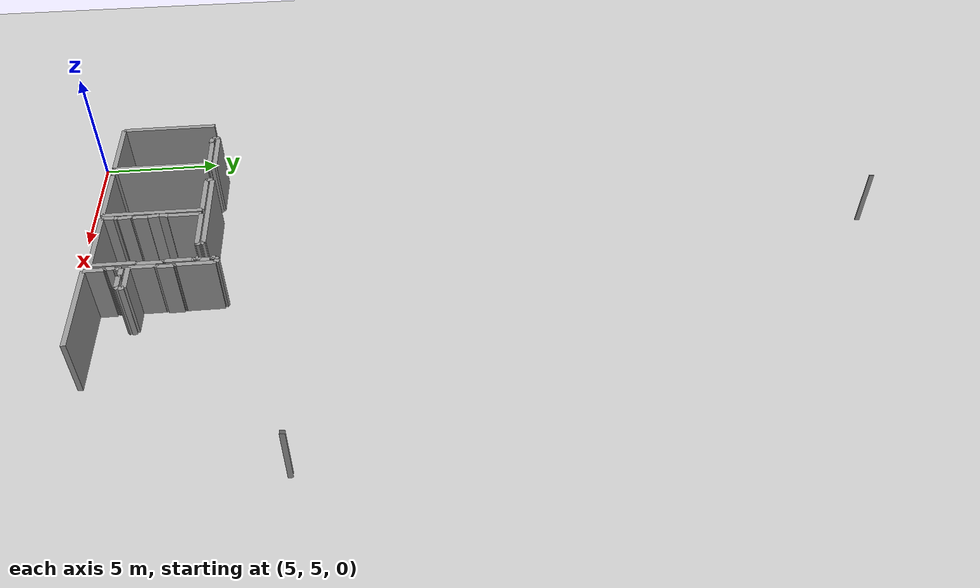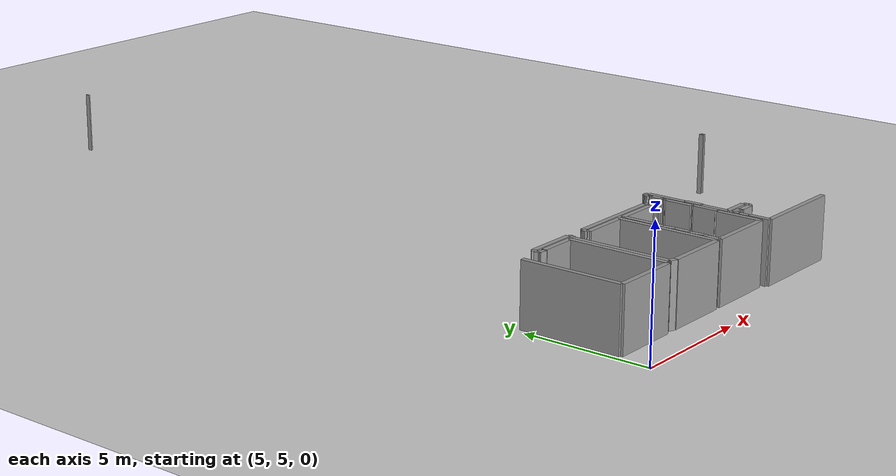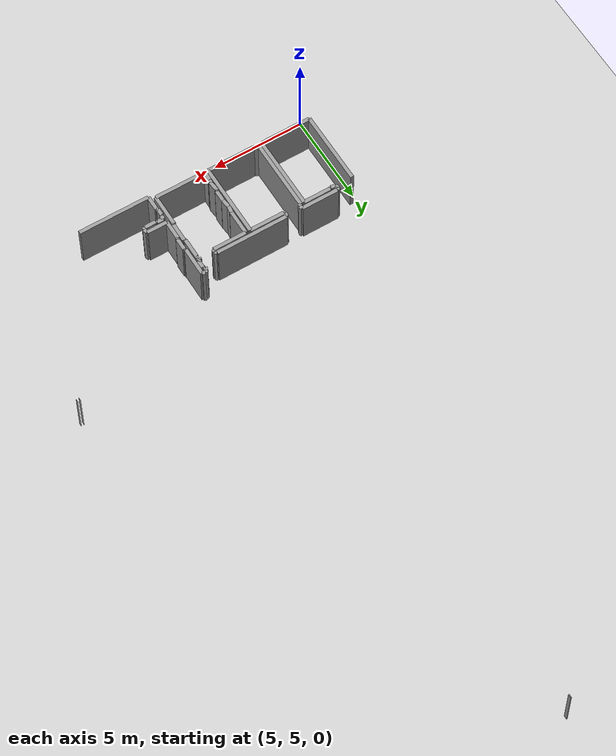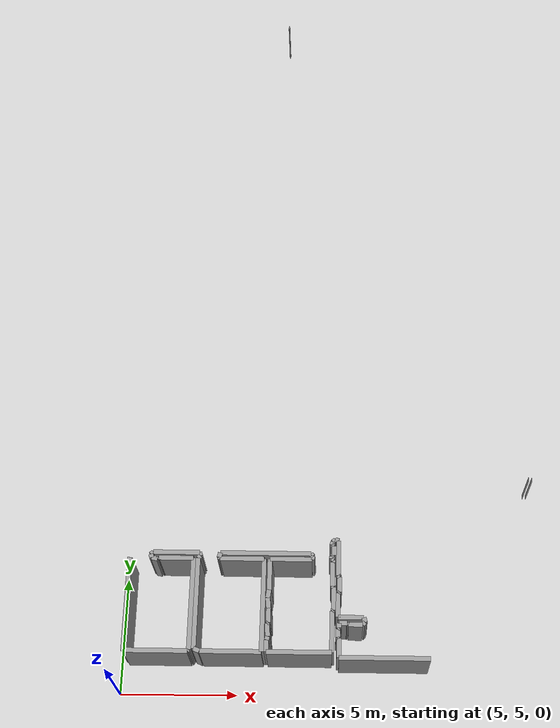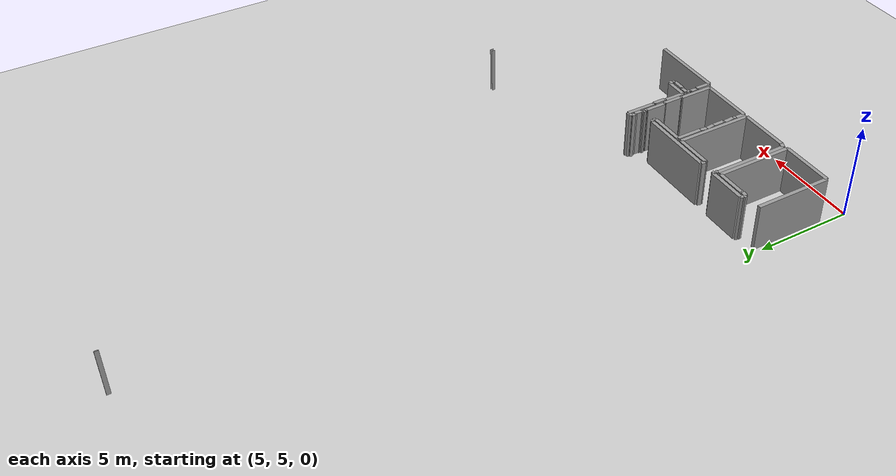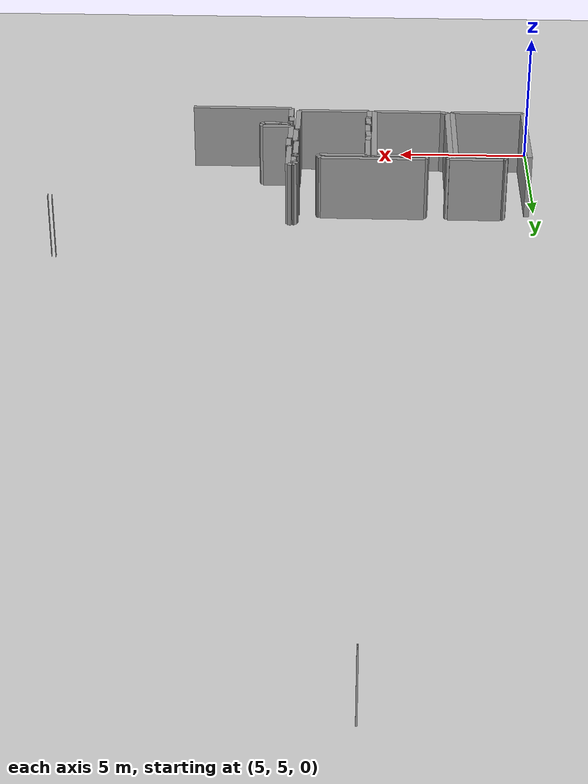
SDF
<sdf version="1.4">
 <world name="1_wall">
  <model name="ground_plane">
   <static>1</static>
   <link name="link">
    <collision name="collision">
     <geometry><plane><normal>0 0 1</normal><size>1000 1000</size></plane></geometry>
     <surface><friction><ode><mu>100</mu><mu2>50</mu2></ode></friction></surface>
    </collision>
    <visual name="visual">
     <cast_shadows>0</cast_shadows>
     <geometry><plane><normal>0 0 1</normal><size>10000 10000</size></plane></geometry>
     <material>
      <script><uri>file://media/materials/scripts/gazebo.material</uri><name>Gazebo/Grey</name></script>
     </material>
    </visual>
    <velocity_decay><linear>0</linear><angular>0</angular></velocity_decay>
   </link>
  </model>
  <model name="Wall_0">
   <static>1</static>
   <link name="Wall_0">
    <collision name="Wall_Collision_0">
     <geometry><box><size>0.049999999999998934 0.2 2.5</size></box></geometry>
     <pose>0 0 1.25 0 -0 0</pose>
    </collision>
    <visual name="Wall_Visual_0">
     <pose>0 0 1.25 0 -0 0</pose>
     <geometry><box><size>0.049999999999998934 0.2 2.5</size></box></geometry>
     <material>
      <script><uri>file://media/materials/scripts/gazebo.material</uri><name>Gazebo/Grey</name></script>
     </material>
    </visual>
    <velocity_decay><linear>0</linear><angular>0</angular></velocity_decay>
    <pose>11.475000000000001 38.5 0 0 0 3.141592653589793</pose>
   </link>
  </model>
  <model name="Wall_1">
   <static>1</static>
   <link name="Wall_1">
    <collision name="Wall_Collision_1">
     <geometry><box><size>0.049999999999998934 0.2 2.5</size></box></geometry>
     <pose>0 0 1.25 0 -0 0</pose>
    </collision>
    <visual name="Wall_Visual_1">
     <pose>0 0 1.25 0 -0 0</pose>
     <geometry><box><size>0.049999999999998934 0.2 2.5</size></box></geometry>
     <material>
      <script><uri>file://media/materials/scripts/gazebo.material</uri><name>Gazebo/Grey</name></script>
     </material>
    </visual>
    <velocity_decay><linear>0</linear><angular>0</angular></velocity_decay>
    <pose>11.475000000000001 38.5 0 0 0 0.0</pose>
   </link>
  </model>
  <model name="Wall_2">
   <static>1</static>
   <link name="Wall_2">
    <collision name="Wall_Collision_2">
     <geometry><box><size>0.0 0.2 2.5</size></box></geometry>
     <pose>0 0 1.25 0 -0 0</pose>
    </collision>
    <visual name="Wall_Visual_2">
     <pose>0 0 1.25 0 -0 0</pose>
     <geometry><box><size>0.0 0.2 2.5</size></box></geometry>
     <material>
      <script><uri>file://media/materials/scripts/gazebo.material</uri><name>Gazebo/Grey</name></script>
     </material>
    </visual>
    <velocity_decay><linear>0</linear><angular>0</angular></velocity_decay>
    <pose>22.8 14.100000000000001 0 0 0 0.0</pose>
   </link>
  </model>
  <model name="Wall_3">
   <static>1</static>
   <link name="Wall_3">
    <collision name="Wall_Collision_3">
     <geometry><box><size>0.0 0.2 2.5</size></box></geometry>
     <pose>0 0 1.25 0 -0 0</pose>
    </collision>
    <visual name="Wall_Visual_3">
     <pose>0 0 1.25 0 -0 0</pose>
     <geometry><box><size>0.0 0.2 2.5</size></box></geometry>
     <material>
      <script><uri>file://media/materials/scripts/gazebo.material</uri><name>Gazebo/Grey</name></script>
     </material>
    </visual>
    <velocity_decay><linear>0</linear><angular>0</angular></velocity_decay>
    <pose>22.650000000000002 14.100000000000001 0 0 0 0.0</pose>
   </link>
  </model>
  <model name="Wall_4">
   <static>1</static>
   <link name="Wall_4">
    <collision name="Wall_Collision_4">
     <geometry><box><size>3.849999999999998 0.2 2.5</size></box></geometry>
     <pose>0 0 1.25 0 -0 0</pose>
    </collision>
    <visual name="Wall_Visual_4">
     <pose>0 0 1.25 0 -0 0</pose>
     <geometry><box><size>3.849999999999998 0.2 2.5</size></box></geometry>
     <material>
      <script><uri>file://media/materials/scripts/gazebo.material</uri><name>Gazebo/Grey</name></script>
     </material>
    </visual>
    <velocity_decay><linear>0</linear><angular>0</angular></velocity_decay>
    <pose>16.275 6.15 0 0 0 3.141592653589793</pose>
   </link>
  </model>
  <model name="Wall_5">
   <static>1</static>
   <link name="Wall_5">
    <collision name="Wall_Collision_5">
     <geometry><box><size>0.7999999999999998 0.2 2.5</size></box></geometry>
     <pose>0 0 1.25 0 -0 0</pose>
    </collision>
    <visual name="Wall_Visual_5">
     <pose>0 0 1.25 0 -0 0</pose>
     <geometry><box><size>0.7999999999999998 0.2 2.5</size></box></geometry>
     <material>
      <script><uri>file://media/materials/scripts/gazebo.material</uri><name>Gazebo/Grey</name></script>
     </material>
    </visual>
    <velocity_decay><linear>0</linear><angular>0</angular></velocity_decay>
    <pose>14.350000000000001 6.550000000000001 0 0 0 1.5707963267948966</pose>
   </link>
  </model>
  <model name="Wall_6">
   <static>1</static>
   <link name="Wall_6">
    <collision name="Wall_Collision_6">
     <geometry><box><size>0.07071067811865513 0.2 2.5</size></box></geometry>
     <pose>0 0 1.25 0 -0 0</pose>
    </collision>
    <visual name="Wall_Visual_6">
     <pose>0 0 1.25 0 -0 0</pose>
     <geometry><box><size>0.07071067811865513 0.2 2.5</size></box></geometry>
     <material>
      <script><uri>file://media/materials/scripts/gazebo.material</uri><name>Gazebo/Grey</name></script>
     </material>
    </visual>
    <velocity_decay><linear>0</linear><angular>0</angular></velocity_decay>
    <pose>14.325000000000001 6.975 0 0 0 2.3561944901923537</pose>
   </link>
  </model>
  <model name="Wall_7">
   <static>1</static>
   <link name="Wall_7">
    <collision name="Wall_Collision_7">
     <geometry><box><size>0.35000000000000053 0.2 2.5</size></box></geometry>
     <pose>0 0 1.25 0 -0 0</pose>
    </collision>
    <visual name="Wall_Visual_7">
     <pose>0 0 1.25 0 -0 0</pose>
     <geometry><box><size>0.35000000000000053 0.2 2.5</size></box></geometry>
     <material>
      <script><uri>file://media/materials/scripts/gazebo.material</uri><name>Gazebo/Grey</name></script>
     </material>
    </visual>
    <velocity_decay><linear>0</linear><angular>0</angular></velocity_decay>
    <pose>14.3 7.175000000000001 0 0 0 1.5707963267948966</pose>
   </link>
  </model>
  <model name="Wall_8">
   <static>1</static>
   <link name="Wall_8">
    <collision name="Wall_Collision_8">
     <geometry><box><size>0.07071067811865513 0.2 2.5</size></box></geometry>
     <pose>0 0 1.25 0 -0 0</pose>
    </collision>
    <visual name="Wall_Visual_8">
     <pose>0 0 1.25 0 -0 0</pose>
     <geometry><box><size>0.07071067811865513 0.2 2.5</size></box></geometry>
     <material>
      <script><uri>file://media/materials/scripts/gazebo.material</uri><name>Gazebo/Grey</name></script>
     </material>
    </visual>
    <velocity_decay><linear>0</linear><angular>0</angular></velocity_decay>
    <pose>14.325000000000001 7.375 0 0 0 0.7853981633974394</pose>
   </link>
  </model>
  <model name="Wall_9">
   <static>1</static>
   <link name="Wall_9">
    <collision name="Wall_Collision_9">
     <geometry><box><size>0.20000000000000018 0.2 2.5</size></box></geometry>
     <pose>0 0 1.25 0 -0 0</pose>
    </collision>
    <visual name="Wall_Visual_9">
     <pose>0 0 1.25 0 -0 0</pose>
     <geometry><box><size>0.20000000000000018 0.2 2.5</size></box></geometry>
     <material>
      <script><uri>file://media/materials/scripts/gazebo.material</uri><name>Gazebo/Grey</name></script>
     </material>
    </visual>
    <velocity_decay><linear>0</linear><angular>0</angular></velocity_decay>
    <pose>14.350000000000001 7.5 0 0 0 1.5707963267948966</pose>
   </link>
  </model>
  <model name="Wall_10">
   <static>1</static>
   <link name="Wall_10">
    <collision name="Wall_Collision_10">
     <geometry><box><size>0.34999999999999964 0.2 2.5</size></box></geometry>
     <pose>0 0 1.25 0 -0 0</pose>
    </collision>
    <visual name="Wall_Visual_10">
     <pose>0 0 1.25 0 -0 0</pose>
     <geometry><box><size>0.34999999999999964 0.2 2.5</size></box></geometry>
     <material>
      <script><uri>file://media/materials/scripts/gazebo.material</uri><name>Gazebo/Grey</name></script>
     </material>
    </visual>
    <velocity_decay><linear>0</linear><angular>0</angular></velocity_decay>
    <pose>14.525000000000002 7.6000000000000005 0 0 0 0.0</pose>
   </link>
  </model>
  <model name="Wall_11">
   <static>1</static>
   <link name="Wall_11">
    <collision name="Wall_Collision_11">
     <geometry><box><size>0.07071067811865388 0.2 2.5</size></box></geometry>
     <pose>0 0 1.25 0 -0 0</pose>
    </collision>
    <visual name="Wall_Visual_11">
     <pose>0 0 1.25 0 -0 0</pose>
     <geometry><box><size>0.07071067811865388 0.2 2.5</size></box></geometry>
     <material>
      <script><uri>file://media/materials/scripts/gazebo.material</uri><name>Gazebo/Grey</name></script>
     </material>
    </visual>
    <velocity_decay><linear>0</linear><angular>0</angular></velocity_decay>
    <pose>14.725000000000001 7.575000000000001 0 0 0 -0.7853981633974572</pose>
   </link>
  </model>
  <model name="Wall_12">
   <static>1</static>
   <link name="Wall_12">
    <collision name="Wall_Collision_12">
     <geometry><box><size>0.6000000000000014 0.2 2.5</size></box></geometry>
     <pose>0 0 1.25 0 -0 0</pose>
    </collision>
    <visual name="Wall_Visual_12">
     <pose>0 0 1.25 0 -0 0</pose>
     <geometry><box><size>0.6000000000000014 0.2 2.5</size></box></geometry>
     <material>
      <script><uri>file://media/materials/scripts/gazebo.material</uri><name>Gazebo/Grey</name></script>
     </material>
    </visual>
    <velocity_decay><linear>0</linear><angular>0</angular></velocity_decay>
    <pose>15.05 7.550000000000001 0 0 0 0.0</pose>
   </link>
  </model>
  <model name="Wall_13">
   <static>1</static>
   <link name="Wall_13">
    <collision name="Wall_Collision_13">
     <geometry><box><size>0.141421356237309 0.2 2.5</size></box></geometry>
     <pose>0 0 1.25 0 -0 0</pose>
    </collision>
    <visual name="Wall_Visual_13">
     <pose>0 0 1.25 0 -0 0</pose>
     <geometry><box><size>0.141421356237309 0.2 2.5</size></box></geometry>
     <material>
      <script><uri>file://media/materials/scripts/gazebo.material</uri><name>Gazebo/Grey</name></script>
     </material>
    </visual>
    <velocity_decay><linear>0</linear><angular>0</angular></velocity_decay>
    <pose>15.400000000000002 7.6000000000000005 0 0 0 0.7853981633974483</pose>
   </link>
  </model>
  <model name="Wall_14">
   <static>1</static>
   <link name="Wall_14">
    <collision name="Wall_Collision_14">
     <geometry><box><size>0.20615528128088337 0.2 2.5</size></box></geometry>
     <pose>0 0 1.25 0 -0 0</pose>
    </collision>
    <visual name="Wall_Visual_14">
     <pose>0 0 1.25 0 -0 0</pose>
     <geometry><box><size>0.20615528128088337 0.2 2.5</size></box></geometry>
     <material>
      <script><uri>file://media/materials/scripts/gazebo.material</uri><name>Gazebo/Grey</name></script>
     </material>
    </visual>
    <velocity_decay><linear>0</linear><angular>0</angular></velocity_decay>
    <pose>15.425 7.75 0 0 0 1.815774989921764</pose>
   </link>
  </model>
  <model name="Wall_15">
   <static>1</static>
   <link name="Wall_15">
    <collision name="Wall_Collision_15">
     <geometry><box><size>1.0999999999999996 0.2 2.5</size></box></geometry>
     <pose>0 0 1.25 0 -0 0</pose>
    </collision>
    <visual name="Wall_Visual_15">
     <pose>0 0 1.25 0 -0 0</pose>
     <geometry><box><size>1.0999999999999996 0.2 2.5</size></box></geometry>
     <material>
      <script><uri>file://media/materials/scripts/gazebo.material</uri><name>Gazebo/Grey</name></script>
     </material>
    </visual>
    <velocity_decay><linear>0</linear><angular>0</angular></velocity_decay>
    <pose>14.850000000000001 7.8500000000000005 0 0 0 3.141592653589793</pose>
   </link>
  </model>
  <model name="Wall_16">
   <static>1</static>
   <link name="Wall_16">
    <collision name="Wall_Collision_16">
     <geometry><box><size>1.0499999999999998 0.2 2.5</size></box></geometry>
     <pose>0 0 1.25 0 -0 0</pose>
    </collision>
    <visual name="Wall_Visual_16">
     <pose>0 0 1.25 0 -0 0</pose>
     <geometry><box><size>1.0499999999999998 0.2 2.5</size></box></geometry>
     <material>
      <script><uri>file://media/materials/scripts/gazebo.material</uri><name>Gazebo/Grey</name></script>
     </material>
    </visual>
    <velocity_decay><linear>0</linear><angular>0</angular></velocity_decay>
    <pose>14.3 8.375 0 0 0 1.5707963267948966</pose>
   </link>
  </model>
  <model name="Wall_17">
   <static>1</static>
   <link name="Wall_17">
    <collision name="Wall_Collision_17">
     <geometry><box><size>0.07071067811865576 0.2 2.5</size></box></geometry>
     <pose>0 0 1.25 0 -0 0</pose>
    </collision>
    <visual name="Wall_Visual_17">
     <pose>0 0 1.25 0 -0 0</pose>
     <geometry><box><size>0.07071067811865576 0.2 2.5</size></box></geometry>
     <material>
      <script><uri>file://media/materials/scripts/gazebo.material</uri><name>Gazebo/Grey</name></script>
     </material>
    </visual>
    <velocity_decay><linear>0</linear><angular>0</angular></velocity_decay>
    <pose>14.325000000000001 8.925 0 0 0 0.7853981633974483</pose>
   </link>
  </model>
  <model name="Wall_18">
   <static>1</static>
   <link name="Wall_18">
    <collision name="Wall_Collision_18">
     <geometry><box><size>0.6500000000000004 0.2 2.5</size></box></geometry>
     <pose>0 0 1.25 0 -0 0</pose>
    </collision>
    <visual name="Wall_Visual_18">
     <pose>0 0 1.25 0 -0 0</pose>
     <geometry><box><size>0.6500000000000004 0.2 2.5</size></box></geometry>
     <material>
      <script><uri>file://media/materials/scripts/gazebo.material</uri><name>Gazebo/Grey</name></script>
     </material>
    </visual>
    <velocity_decay><linear>0</linear><angular>0</angular></velocity_decay>
    <pose>14.350000000000001 9.275000000000002 0 0 0 1.5707963267948966</pose>
   </link>
  </model>
  <model name="Wall_19">
   <static>1</static>
   <link name="Wall_19">
    <collision name="Wall_Collision_19">
     <geometry><box><size>0.0707106781186545 0.2 2.5</size></box></geometry>
     <pose>0 0 1.25 0 -0 0</pose>
    </collision>
    <visual name="Wall_Visual_19">
     <pose>0 0 1.25 0 -0 0</pose>
     <geometry><box><size>0.0707106781186545 0.2 2.5</size></box></geometry>
     <material>
      <script><uri>file://media/materials/scripts/gazebo.material</uri><name>Gazebo/Grey</name></script>
     </material>
    </visual>
    <velocity_decay><linear>0</linear><angular>0</angular></velocity_decay>
    <pose>14.325000000000001 9.625 0 0 0 2.3561944901923626</pose>
   </link>
  </model>
  <model name="Wall_20">
   <static>1</static>
   <link name="Wall_20">
    <collision name="Wall_Collision_20">
     <geometry><box><size>1.5500000000000007 0.2 2.5</size></box></geometry>
     <pose>0 0 1.25 0 -0 0</pose>
    </collision>
    <visual name="Wall_Visual_20">
     <pose>0 0 1.25 0 -0 0</pose>
     <geometry><box><size>1.5500000000000007 0.2 2.5</size></box></geometry>
     <material>
      <script><uri>file://media/materials/scripts/gazebo.material</uri><name>Gazebo/Grey</name></script>
     </material>
    </visual>
    <velocity_decay><linear>0</linear><angular>0</angular></velocity_decay>
    <pose>14.3 10.425 0 0 0 1.5707963267948966</pose>
   </link>
  </model>
  <model name="Wall_21">
   <static>1</static>
   <link name="Wall_21">
    <collision name="Wall_Collision_21">
     <geometry><box><size>0.15811388300841897 0.2 2.5</size></box></geometry>
     <pose>0 0 1.25 0 -0 0</pose>
    </collision>
    <visual name="Wall_Visual_21">
     <pose>0 0 1.25 0 -0 0</pose>
     <geometry><box><size>0.15811388300841897 0.2 2.5</size></box></geometry>
     <material>
      <script><uri>file://media/materials/scripts/gazebo.material</uri><name>Gazebo/Grey</name></script>
     </material>
    </visual>
    <velocity_decay><linear>0</linear><angular>0</angular></velocity_decay>
    <pose>14.225000000000001 11.225000000000001 0 0 0 2.819842099193158</pose>
   </link>
  </model>
  <model name="Wall_22">
   <static>1</static>
   <link name="Wall_22">
    <collision name="Wall_Collision_22">
     <geometry><box><size>0.141421356237309 0.2 2.5</size></box></geometry>
     <pose>0 0 1.25 0 -0 0</pose>
    </collision>
    <visual name="Wall_Visual_22">
     <pose>0 0 1.25 0 -0 0</pose>
     <geometry><box><size>0.141421356237309 0.2 2.5</size></box></geometry>
     <material>
      <script><uri>file://media/materials/scripts/gazebo.material</uri><name>Gazebo/Grey</name></script>
     </material>
    </visual>
    <velocity_decay><linear>0</linear><angular>0</angular></velocity_decay>
    <pose>14.100000000000001 11.2 0 0 0 -2.356194490192345</pose>
   </link>
  </model>
  <model name="Wall_23">
   <static>1</static>
   <link name="Wall_23">
    <collision name="Wall_Collision_23">
     <geometry><box><size>0.15811388300841953 0.2 2.5</size></box></geometry>
     <pose>0 0 1.25 0 -0 0</pose>
    </collision>
    <visual name="Wall_Visual_23">
     <pose>0 0 1.25 0 -0 0</pose>
     <geometry><box><size>0.15811388300841953 0.2 2.5</size></box></geometry>
     <material>
      <script><uri>file://media/materials/scripts/gazebo.material</uri><name>Gazebo/Grey</name></script>
     </material>
    </visual>
    <velocity_decay><linear>0</linear><angular>0</angular></velocity_decay>
    <pose>14.025 11.075 0 0 0 -1.8925468811915425</pose>
   </link>
  </model>
  <model name="Wall_24">
   <static>1</static>
   <link name="Wall_24">
    <collision name="Wall_Collision_24">
     <geometry><box><size>0.11180339887499027 0.2 2.5</size></box></geometry>
     <pose>0 0 1.25 0 -0 0</pose>
    </collision>
    <visual name="Wall_Visual_24">
     <pose>0 0 1.25 0 -0 0</pose>
     <geometry><box><size>0.11180339887499027 0.2 2.5</size></box></geometry>
     <material>
      <script><uri>file://media/materials/scripts/gazebo.material</uri><name>Gazebo/Grey</name></script>
     </material>
    </visual>
    <velocity_decay><linear>0</linear><angular>0</angular></velocity_decay>
    <pose>14.05 10.975000000000001 0 0 0 -0.4636476090007919</pose>
   </link>
  </model>
  <model name="Wall_25">
   <static>1</static>
   <link name="Wall_25">
    <collision name="Wall_Collision_25">
     <geometry><box><size>0.40000000000000036 0.2 2.5</size></box></geometry>
     <pose>0 0 1.25 0 -0 0</pose>
    </collision>
    <visual name="Wall_Visual_25">
     <pose>0 0 1.25 0 -0 0</pose>
     <geometry><box><size>0.40000000000000036 0.2 2.5</size></box></geometry>
     <material>
      <script><uri>file://media/materials/scripts/gazebo.material</uri><name>Gazebo/Grey</name></script>
     </material>
    </visual>
    <velocity_decay><linear>0</linear><angular>0</angular></velocity_decay>
    <pose>14.100000000000001 10.75 0 0 0 -1.5707963267948966</pose>
   </link>
  </model>
  <model name="Wall_26">
   <static>1</static>
   <link name="Wall_26">
    <collision name="Wall_Collision_26">
     <geometry><box><size>0.11180339887499108 0.2 2.5</size></box></geometry>
     <pose>0 0 1.25 0 -0 0</pose>
    </collision>
    <visual name="Wall_Visual_26">
     <pose>0 0 1.25 0 -0 0</pose>
     <geometry><box><size>0.11180339887499108 0.2 2.5</size></box></geometry>
     <material>
      <script><uri>file://media/materials/scripts/gazebo.material</uri><name>Gazebo/Grey</name></script>
     </material>
    </visual>
    <velocity_decay><linear>0</linear><angular>0</angular></velocity_decay>
    <pose>14.05 10.525 0 0 0 -2.677945044588987</pose>
   </link>
  </model>
  <model name="Wall_27">
   <static>1</static>
   <link name="Wall_27">
    <collision name="Wall_Collision_27">
     <geometry><box><size>0.09999999999999964 0.2 2.5</size></box></geometry>
     <pose>0 0 1.25 0 -0 0</pose>
    </collision>
    <visual name="Wall_Visual_27">
     <pose>0 0 1.25 0 -0 0</pose>
     <geometry><box><size>0.09999999999999964 0.2 2.5</size></box></geometry>
     <material>
      <script><uri>file://media/materials/scripts/gazebo.material</uri><name>Gazebo/Grey</name></script>
     </material>
    </visual>
    <velocity_decay><linear>0</linear><angular>0</angular></velocity_decay>
    <pose>14.0 10.45 0 0 0 -1.5707963267948966</pose>
   </link>
  </model>
  <model name="Wall_28">
   <static>1</static>
   <link name="Wall_28">
    <collision name="Wall_Collision_28">
     <geometry><box><size>0.11180339887499027 0.2 2.5</size></box></geometry>
     <pose>0 0 1.25 0 -0 0</pose>
    </collision>
    <visual name="Wall_Visual_28">
     <pose>0 0 1.25 0 -0 0</pose>
     <geometry><box><size>0.11180339887499027 0.2 2.5</size></box></geometry>
     <material>
      <script><uri>file://media/materials/scripts/gazebo.material</uri><name>Gazebo/Grey</name></script>
     </material>
    </visual>
    <velocity_decay><linear>0</linear><angular>0</angular></velocity_decay>
    <pose>14.05 10.375 0 0 0 -0.4636476090007919</pose>
   </link>
  </model>
  <model name="Wall_29">
   <static>1</static>
   <link name="Wall_29">
    <collision name="Wall_Collision_29">
     <geometry><box><size>0.11180339887499108 0.2 2.5</size></box></geometry>
     <pose>0 0 1.25 0 -0 0</pose>
    </collision>
    <visual name="Wall_Visual_29">
     <pose>0 0 1.25 0 -0 0</pose>
     <geometry><box><size>0.11180339887499108 0.2 2.5</size></box></geometry>
     <material>
      <script><uri>file://media/materials/scripts/gazebo.material</uri><name>Gazebo/Grey</name></script>
     </material>
    </visual>
    <velocity_decay><linear>0</linear><angular>0</angular></velocity_decay>
    <pose>14.075000000000001 10.3 0 0 0 -2.0344439357957027</pose>
   </link>
  </model>
  <model name="Wall_30">
   <static>1</static>
   <link name="Wall_30">
    <collision name="Wall_Collision_30">
     <geometry><box><size>1.049999999999999 0.2 2.5</size></box></geometry>
     <pose>0 0 1.25 0 -0 0</pose>
    </collision>
    <visual name="Wall_Visual_30">
     <pose>0 0 1.25 0 -0 0</pose>
     <geometry><box><size>1.049999999999999 0.2 2.5</size></box></geometry>
     <material>
      <script><uri>file://media/materials/scripts/gazebo.material</uri><name>Gazebo/Grey</name></script>
     </material>
    </visual>
    <velocity_decay><linear>0</linear><angular>0</angular></velocity_decay>
    <pose>14.05 9.725000000000001 0 0 0 -1.5707963267948966</pose>
   </link>
  </model>
  <model name="Wall_31">
   <static>1</static>
   <link name="Wall_31">
    <collision name="Wall_Collision_31">
     <geometry><box><size>0.07071067811865576 0.2 2.5</size></box></geometry>
     <pose>0 0 1.25 0 -0 0</pose>
    </collision>
    <visual name="Wall_Visual_31">
     <pose>0 0 1.25 0 -0 0</pose>
     <geometry><box><size>0.07071067811865576 0.2 2.5</size></box></geometry>
     <material>
      <script><uri>file://media/materials/scripts/gazebo.material</uri><name>Gazebo/Grey</name></script>
     </material>
    </visual>
    <velocity_decay><linear>0</linear><angular>0</angular></velocity_decay>
    <pose>14.075000000000001 9.175 0 0 0 -0.7853981633974483</pose>
   </link>
  </model>
  <model name="Wall_32">
   <static>1</static>
   <link name="Wall_32">
    <collision name="Wall_Collision_32">
     <geometry><box><size>1.0 0.2 2.5</size></box></geometry>
     <pose>0 0 1.25 0 -0 0</pose>
    </collision>
    <visual name="Wall_Visual_32">
     <pose>0 0 1.25 0 -0 0</pose>
     <geometry><box><size>1.0 0.2 2.5</size></box></geometry>
     <material>
      <script><uri>file://media/materials/scripts/gazebo.material</uri><name>Gazebo/Grey</name></script>
     </material>
    </visual>
    <velocity_decay><linear>0</linear><angular>0</angular></velocity_decay>
    <pose>14.100000000000001 8.65 0 0 0 -1.5707963267948966</pose>
   </link>
  </model>
  <model name="Wall_33">
   <static>1</static>
   <link name="Wall_33">
    <collision name="Wall_Collision_33">
     <geometry><box><size>0.07071067811865576 0.2 2.5</size></box></geometry>
     <pose>0 0 1.25 0 -0 0</pose>
    </collision>
    <visual name="Wall_Visual_33">
     <pose>0 0 1.25 0 -0 0</pose>
     <geometry><box><size>0.07071067811865576 0.2 2.5</size></box></geometry>
     <material>
      <script><uri>file://media/materials/scripts/gazebo.material</uri><name>Gazebo/Grey</name></script>
     </material>
    </visual>
    <velocity_decay><linear>0</linear><angular>0</angular></velocity_decay>
    <pose>14.075000000000001 8.125 0 0 0 -2.356194490192345</pose>
   </link>
  </model>
  <model name="Wall_34">
   <static>1</static>
   <link name="Wall_34">
    <collision name="Wall_Collision_34">
     <geometry><box><size>1.7499999999999991 0.2 2.5</size></box></geometry>
     <pose>0 0 1.25 0 -0 0</pose>
    </collision>
    <visual name="Wall_Visual_34">
     <pose>0 0 1.25 0 -0 0</pose>
     <geometry><box><size>1.7499999999999991 0.2 2.5</size></box></geometry>
     <material>
      <script><uri>file://media/materials/scripts/gazebo.material</uri><name>Gazebo/Grey</name></script>
     </material>
    </visual>
    <velocity_decay><linear>0</linear><angular>0</angular></velocity_decay>
    <pose>14.05 7.225 0 0 0 -1.5707963267948966</pose>
   </link>
  </model>
  <model name="Wall_35">
   <static>1</static>
   <link name="Wall_35">
    <collision name="Wall_Collision_35">
     <geometry><box><size>2.75 0.2 2.5</size></box></geometry>
     <pose>0 0 1.25 0 -0 0</pose>
    </collision>
    <visual name="Wall_Visual_35">
     <pose>0 0 1.25 0 -0 0</pose>
     <geometry><box><size>2.75 0.2 2.5</size></box></geometry>
     <material>
      <script><uri>file://media/materials/scripts/gazebo.material</uri><name>Gazebo/Grey</name></script>
     </material>
    </visual>
    <velocity_decay><linear>0</linear><angular>0</angular></velocity_decay>
    <pose>12.675 6.3500000000000005 0 0 0 3.141592653589793</pose>
   </link>
  </model>
  <model name="Wall_36">
   <static>1</static>
   <link name="Wall_36">
    <collision name="Wall_Collision_36">
     <geometry><box><size>0.5 0.2 2.5</size></box></geometry>
     <pose>0 0 1.25 0 -0 0</pose>
    </collision>
    <visual name="Wall_Visual_36">
     <pose>0 0 1.25 0 -0 0</pose>
     <geometry><box><size>0.5 0.2 2.5</size></box></geometry>
     <material>
      <script><uri>file://media/materials/scripts/gazebo.material</uri><name>Gazebo/Grey</name></script>
     </material>
    </visual>
    <velocity_decay><linear>0</linear><angular>0</angular></velocity_decay>
    <pose>11.3 6.6000000000000005 0 0 0 1.5707963267948966</pose>
   </link>
  </model>
  <model name="Wall_37">
   <static>1</static>
   <link name="Wall_37">
    <collision name="Wall_Collision_37">
     <geometry><box><size>0.1581138830084187 0.2 2.5</size></box></geometry>
     <pose>0 0 1.25 0 -0 0</pose>
    </collision>
    <visual name="Wall_Visual_37">
     <pose>0 0 1.25 0 -0 0</pose>
     <geometry><box><size>0.1581138830084187 0.2 2.5</size></box></geometry>
     <material>
      <script><uri>file://media/materials/scripts/gazebo.material</uri><name>Gazebo/Grey</name></script>
     </material>
    </visual>
    <velocity_decay><linear>0</linear><angular>0</angular></velocity_decay>
    <pose>11.325000000000001 6.925000000000001 0 0 0 1.249045772398249</pose>
   </link>
  </model>
  <model name="Wall_38">
   <static>1</static>
   <link name="Wall_38">
    <collision name="Wall_Collision_38">
     <geometry><box><size>0.5522680508593638 0.2 2.5</size></box></geometry>
     <pose>0 0 1.25 0 -0 0</pose>
    </collision>
    <visual name="Wall_Visual_38">
     <pose>0 0 1.25 0 -0 0</pose>
     <geometry><box><size>0.5522680508593638 0.2 2.5</size></box></geometry>
     <material>
      <script><uri>file://media/materials/scripts/gazebo.material</uri><name>Gazebo/Grey</name></script>
     </material>
    </visual>
    <velocity_decay><linear>0</linear><angular>0</angular></velocity_decay>
    <pose>11.325000000000001 7.275 0 0 0 1.6614562139956428</pose>
   </link>
  </model>
  <model name="Wall_39">
   <static>1</static>
   <link name="Wall_39">
    <collision name="Wall_Collision_39">
     <geometry><box><size>0.07071067811865513 0.2 2.5</size></box></geometry>
     <pose>0 0 1.25 0 -0 0</pose>
    </collision>
    <visual name="Wall_Visual_39">
     <pose>0 0 1.25 0 -0 0</pose>
     <geometry><box><size>0.07071067811865513 0.2 2.5</size></box></geometry>
     <material>
      <script><uri>file://media/materials/scripts/gazebo.material</uri><name>Gazebo/Grey</name></script>
     </material>
    </visual>
    <velocity_decay><linear>0</linear><angular>0</angular></velocity_decay>
    <pose>11.325000000000001 7.575000000000001 0 0 0 0.7853981633974394</pose>
   </link>
  </model>
  <model name="Wall_40">
   <static>1</static>
   <link name="Wall_40">
    <collision name="Wall_Collision_40">
     <geometry><box><size>0.6000000000000005 0.2 2.5</size></box></geometry>
     <pose>0 0 1.25 0 -0 0</pose>
    </collision>
    <visual name="Wall_Visual_40">
     <pose>0 0 1.25 0 -0 0</pose>
     <geometry><box><size>0.6000000000000005 0.2 2.5</size></box></geometry>
     <material>
      <script><uri>file://media/materials/scripts/gazebo.material</uri><name>Gazebo/Grey</name></script>
     </material>
    </visual>
    <velocity_decay><linear>0</linear><angular>0</angular></velocity_decay>
    <pose>11.350000000000001 7.9 0 0 0 1.5707963267948966</pose>
   </link>
  </model>
  <model name="Wall_41">
   <static>1</static>
   <link name="Wall_41">
    <collision name="Wall_Collision_41">
     <geometry><box><size>0.4527692569068702 0.2 2.5</size></box></geometry>
     <pose>0 0 1.25 0 -0 0</pose>
    </collision>
    <visual name="Wall_Visual_41">
     <pose>0 0 1.25 0 -0 0</pose>
     <geometry><box><size>0.4527692569068702 0.2 2.5</size></box></geometry>
     <material>
      <script><uri>file://media/materials/scripts/gazebo.material</uri><name>Gazebo/Grey</name></script>
     </material>
    </visual>
    <velocity_decay><linear>0</linear><angular>0</angular></velocity_decay>
    <pose>11.325000000000001 8.425 0 0 0 1.681453547968794</pose>
   </link>
  </model>
  <model name="Wall_42">
   <static>1</static>
   <link name="Wall_42">
    <collision name="Wall_Collision_42">
     <geometry><box><size>0.3535533905932735 0.2 2.5</size></box></geometry>
     <pose>0 0 1.25 0 -0 0</pose>
    </collision>
    <visual name="Wall_Visual_42">
     <pose>0 0 1.25 0 -0 0</pose>
     <geometry><box><size>0.3535533905932735 0.2 2.5</size></box></geometry>
     <material>
      <script><uri>file://media/materials/scripts/gazebo.material</uri><name>Gazebo/Grey</name></script>
     </material>
    </visual>
    <velocity_decay><linear>0</linear><angular>0</angular></velocity_decay>
    <pose>11.325000000000001 8.825 0 0 0 1.4288992721907305</pose>
   </link>
  </model>
  <model name="Wall_43">
   <static>1</static>
   <link name="Wall_43">
    <collision name="Wall_Collision_43">
     <geometry><box><size>1.3500000000000014 0.2 2.5</size></box></geometry>
     <pose>0 0 1.25 0 -0 0</pose>
    </collision>
    <visual name="Wall_Visual_43">
     <pose>0 0 1.25 0 -0 0</pose>
     <geometry><box><size>1.3500000000000014 0.2 2.5</size></box></geometry>
     <material>
      <script><uri>file://media/materials/scripts/gazebo.material</uri><name>Gazebo/Grey</name></script>
     </material>
    </visual>
    <velocity_decay><linear>0</linear><angular>0</angular></velocity_decay>
    <pose>11.350000000000001 9.675 0 0 0 1.5707963267948966</pose>
   </link>
  </model>
  <model name="Wall_44">
   <static>1</static>
   <link name="Wall_44">
    <collision name="Wall_Collision_44">
     <geometry><box><size>1.799999999999999 0.2 2.5</size></box></geometry>
     <pose>0 0 1.25 0 -0 0</pose>
    </collision>
    <visual name="Wall_Visual_44">
     <pose>0 0 1.25 0 -0 0</pose>
     <geometry><box><size>1.799999999999999 0.2 2.5</size></box></geometry>
     <material>
      <script><uri>file://media/materials/scripts/gazebo.material</uri><name>Gazebo/Grey</name></script>
     </material>
    </visual>
    <velocity_decay><linear>0</linear><angular>0</angular></velocity_decay>
    <pose>12.25 10.350000000000001 0 0 0 0.0</pose>
   </link>
  </model>
  <model name="Wall_45">
   <static>1</static>
   <link name="Wall_45">
    <collision name="Wall_Collision_45">
     <geometry><box><size>0.15811388300841783 0.2 2.5</size></box></geometry>
     <pose>0 0 1.25 0 -0 0</pose>
    </collision>
    <visual name="Wall_Visual_45">
     <pose>0 0 1.25 0 -0 0</pose>
     <geometry><box><size>0.15811388300841783 0.2 2.5</size></box></geometry>
     <material>
      <script><uri>file://media/materials/scripts/gazebo.material</uri><name>Gazebo/Grey</name></script>
     </material>
    </visual>
    <velocity_decay><linear>0</linear><angular>0</angular></velocity_decay>
    <pose>13.175 10.425 0 0 0 1.2490457723982473</pose>
   </link>
  </model>
  <model name="Wall_46">
   <static>1</static>
   <link name="Wall_46">
    <collision name="Wall_Collision_46">
     <geometry><box><size>0.14142135623731025 0.2 2.5</size></box></geometry>
     <pose>0 0 1.25 0 -0 0</pose>
    </collision>
    <visual name="Wall_Visual_46">
     <pose>0 0 1.25 0 -0 0</pose>
     <geometry><box><size>0.14142135623731025 0.2 2.5</size></box></geometry>
     <material>
      <script><uri>file://media/materials/scripts/gazebo.material</uri><name>Gazebo/Grey</name></script>
     </material>
    </visual>
    <velocity_decay><linear>0</linear><angular>0</angular></velocity_decay>
    <pose>13.150000000000002 10.55 0 0 0 2.356194490192336</pose>
   </link>
  </model>
  <model name="Wall_47">
   <static>1</static>
   <link name="Wall_47">
    <collision name="Wall_Collision_47">
     <geometry><box><size>3.9000000000000004 0.2 2.5</size></box></geometry>
     <pose>0 0 1.25 0 -0 0</pose>
    </collision>
    <visual name="Wall_Visual_47">
     <pose>0 0 1.25 0 -0 0</pose>
     <geometry><box><size>3.9000000000000004 0.2 2.5</size></box></geometry>
     <material>
      <script><uri>file://media/materials/scripts/gazebo.material</uri><name>Gazebo/Grey</name></script>
     </material>
    </visual>
    <velocity_decay><linear>0</linear><angular>0</angular></velocity_decay>
    <pose>11.150000000000002 10.600000000000001 0 0 0 3.141592653589793</pose>
   </link>
  </model>
  <model name="Wall_48">
   <static>1</static>
   <link name="Wall_48">
    <collision name="Wall_Collision_48">
     <geometry><box><size>0.20615528128088423 0.2 2.5</size></box></geometry>
     <pose>0 0 1.25 0 -0 0</pose>
    </collision>
    <visual name="Wall_Visual_48">
     <pose>0 0 1.25 0 -0 0</pose>
     <geometry><box><size>0.20615528128088423 0.2 2.5</size></box></geometry>
     <material>
      <script><uri>file://media/materials/scripts/gazebo.material</uri><name>Gazebo/Grey</name></script>
     </material>
    </visual>
    <velocity_decay><linear>0</linear><angular>0</angular></velocity_decay>
    <pose>9.175 10.5 0 0 0 -1.8157749899217628</pose>
   </link>
  </model>
  <model name="Wall_49">
   <static>1</static>
   <link name="Wall_49">
    <collision name="Wall_Collision_49">
     <geometry><box><size>0.0707106781186545 0.2 2.5</size></box></geometry>
     <pose>0 0 1.25 0 -0 0</pose>
    </collision>
    <visual name="Wall_Visual_49">
     <pose>0 0 1.25 0 -0 0</pose>
     <geometry><box><size>0.0707106781186545 0.2 2.5</size></box></geometry>
     <material>
      <script><uri>file://media/materials/scripts/gazebo.material</uri><name>Gazebo/Grey</name></script>
     </material>
    </visual>
    <velocity_decay><linear>0</linear><angular>0</angular></velocity_decay>
    <pose>9.175 10.375 0 0 0 -0.7853981633974305</pose>
   </link>
  </model>
  <model name="Wall_50">
   <static>1</static>
   <link name="Wall_50">
    <collision name="Wall_Collision_50">
     <geometry><box><size>1.9000000000000004 0.2 2.5</size></box></geometry>
     <pose>0 0 1.25 0 -0 0</pose>
    </collision>
    <visual name="Wall_Visual_50">
     <pose>0 0 1.25 0 -0 0</pose>
     <geometry><box><size>1.9000000000000004 0.2 2.5</size></box></geometry>
     <material>
      <script><uri>file://media/materials/scripts/gazebo.material</uri><name>Gazebo/Grey</name></script>
     </material>
    </visual>
    <velocity_decay><linear>0</linear><angular>0</angular></velocity_decay>
    <pose>10.150000000000002 10.350000000000001 0 0 0 0.0</pose>
   </link>
  </model>
  <model name="Wall_51">
   <static>1</static>
   <link name="Wall_51">
    <collision name="Wall_Collision_51">
     <geometry><box><size>4.000000000000001 0.2 2.5</size></box></geometry>
     <pose>0 0 1.25 0 -0 0</pose>
    </collision>
    <visual name="Wall_Visual_51">
     <pose>0 0 1.25 0 -0 0</pose>
     <geometry><box><size>4.000000000000001 0.2 2.5</size></box></geometry>
     <material>
      <script><uri>file://media/materials/scripts/gazebo.material</uri><name>Gazebo/Grey</name></script>
     </material>
    </visual>
    <velocity_decay><linear>0</linear><angular>0</angular></velocity_decay>
    <pose>11.100000000000001 8.350000000000001 0 0 0 -1.5707963267948966</pose>
   </link>
  </model>
  <model name="Wall_52">
   <static>1</static>
   <link name="Wall_52">
    <collision name="Wall_Collision_52">
     <geometry><box><size>2.6000000000000014 0.2 2.5</size></box></geometry>
     <pose>0 0 1.25 0 -0 0</pose>
    </collision>
    <visual name="Wall_Visual_52">
     <pose>0 0 1.25 0 -0 0</pose>
     <geometry><box><size>2.6000000000000014 0.2 2.5</size></box></geometry>
     <material>
      <script><uri>file://media/materials/scripts/gazebo.material</uri><name>Gazebo/Grey</name></script>
     </material>
    </visual>
    <velocity_decay><linear>0</linear><angular>0</angular></velocity_decay>
    <pose>9.8 6.3500000000000005 0 0 0 3.141592653589793</pose>
   </link>
  </model>
  <model name="Wall_53">
   <static>1</static>
   <link name="Wall_53">
    <collision name="Wall_Collision_53">
     <geometry><box><size>0.2692582403567251 0.2 2.5</size></box></geometry>
     <pose>0 0 1.25 0 -0 0</pose>
    </collision>
    <visual name="Wall_Visual_53">
     <pose>0 0 1.25 0 -0 0</pose>
     <geometry><box><size>0.2692582403567251 0.2 2.5</size></box></geometry>
     <material>
      <script><uri>file://media/materials/scripts/gazebo.material</uri><name>Gazebo/Grey</name></script>
     </material>
    </visual>
    <velocity_decay><linear>0</linear><angular>0</angular></velocity_decay>
    <pose>8.375 6.4 0 0 0 2.7610862764774295</pose>
   </link>
  </model>
  <model name="Wall_54">
   <static>1</static>
   <link name="Wall_54">
    <collision name="Wall_Collision_54">
     <geometry><box><size>3.9000000000000012 0.2 2.5</size></box></geometry>
     <pose>0 0 1.25 0 -0 0</pose>
    </collision>
    <visual name="Wall_Visual_54">
     <pose>0 0 1.25 0 -0 0</pose>
     <geometry><box><size>3.9000000000000012 0.2 2.5</size></box></geometry>
     <material>
      <script><uri>file://media/materials/scripts/gazebo.material</uri><name>Gazebo/Grey</name></script>
     </material>
    </visual>
    <velocity_decay><linear>0</linear><angular>0</angular></velocity_decay>
    <pose>8.25 8.4 0 0 0 1.5707963267948966</pose>
   </link>
  </model>
  <model name="Wall_55">
   <static>1</static>
   <link name="Wall_55">
    <collision name="Wall_Collision_55">
     <geometry><box><size>0.141421356237309 0.2 2.5</size></box></geometry>
     <pose>0 0 1.25 0 -0 0</pose>
    </collision>
    <visual name="Wall_Visual_55">
     <pose>0 0 1.25 0 -0 0</pose>
     <geometry><box><size>0.141421356237309 0.2 2.5</size></box></geometry>
     <material>
      <script><uri>file://media/materials/scripts/gazebo.material</uri><name>Gazebo/Grey</name></script>
     </material>
    </visual>
    <velocity_decay><linear>0</linear><angular>0</angular></velocity_decay>
    <pose>8.3 10.400000000000002 0 0 0 0.7853981633974483</pose>
   </link>
  </model>
  <model name="Wall_56">
   <static>1</static>
   <link name="Wall_56">
    <collision name="Wall_Collision_56">
     <geometry><box><size>0.15811388300841897 0.2 2.5</size></box></geometry>
     <pose>0 0 1.25 0 -0 0</pose>
    </collision>
    <visual name="Wall_Visual_56">
     <pose>0 0 1.25 0 -0 0</pose>
     <geometry><box><size>0.15811388300841897 0.2 2.5</size></box></geometry>
     <material>
      <script><uri>file://media/materials/scripts/gazebo.material</uri><name>Gazebo/Grey</name></script>
     </material>
    </visual>
    <velocity_decay><linear>0</linear><angular>0</angular></velocity_decay>
    <pose>8.325 10.525000000000002 0 0 0 1.8925468811915318</pose>
   </link>
  </model>
  <model name="Wall_57">
   <static>1</static>
   <link name="Wall_57">
    <collision name="Wall_Collision_57">
     <geometry><box><size>2.0 0.2 2.5</size></box></geometry>
     <pose>0 0 1.25 0 -0 0</pose>
    </collision>
    <visual name="Wall_Visual_57">
     <pose>0 0 1.25 0 -0 0</pose>
     <geometry><box><size>2.0 0.2 2.5</size></box></geometry>
     <material>
      <script><uri>file://media/materials/scripts/gazebo.material</uri><name>Gazebo/Grey</name></script>
     </material>
    </visual>
    <velocity_decay><linear>0</linear><angular>0</angular></velocity_decay>
    <pose>7.300000000000001 10.600000000000001 0 0 0 3.141592653589793</pose>
   </link>
  </model>
  <model name="Wall_58">
   <static>1</static>
   <link name="Wall_58">
    <collision name="Wall_Collision_58">
     <geometry><box><size>0.1414213562373109 0.2 2.5</size></box></geometry>
     <pose>0 0 1.25 0 -0 0</pose>
    </collision>
    <visual name="Wall_Visual_58">
     <pose>0 0 1.25 0 -0 0</pose>
     <geometry><box><size>0.1414213562373109 0.2 2.5</size></box></geometry>
     <material>
      <script><uri>file://media/materials/scripts/gazebo.material</uri><name>Gazebo/Grey</name></script>
     </material>
    </visual>
    <velocity_decay><linear>0</linear><angular>0</angular></velocity_decay>
    <pose>6.25 10.55 0 0 0 -2.3561944901923404</pose>
   </link>
  </model>
  <model name="Wall_59">
   <static>1</static>
   <link name="Wall_59">
    <collision name="Wall_Collision_59">
     <geometry><box><size>0.15811388300841756 0.2 2.5</size></box></geometry>
     <pose>0 0 1.25 0 -0 0</pose>
    </collision>
    <visual name="Wall_Visual_59">
     <pose>0 0 1.25 0 -0 0</pose>
     <geometry><box><size>0.15811388300841756 0.2 2.5</size></box></geometry>
     <material>
      <script><uri>file://media/materials/scripts/gazebo.material</uri><name>Gazebo/Grey</name></script>
     </material>
    </visual>
    <velocity_decay><linear>0</linear><angular>0</angular></velocity_decay>
    <pose>6.225 10.425 0 0 0 -1.2490457723982527</pose>
   </link>
  </model>
  <model name="Wall_60">
   <static>1</static>
   <link name="Wall_60">
    <collision name="Wall_Collision_60">
     <geometry><box><size>0.25495097567963937 0.2 2.5</size></box></geometry>
     <pose>0 0 1.25 0 -0 0</pose>
    </collision>
    <visual name="Wall_Visual_60">
     <pose>0 0 1.25 0 -0 0</pose>
     <geometry><box><size>0.25495097567963937 0.2 2.5</size></box></geometry>
     <material>
      <script><uri>file://media/materials/scripts/gazebo.material</uri><name>Gazebo/Grey</name></script>
     </material>
    </visual>
    <velocity_decay><linear>0</linear><angular>0</angular></velocity_decay>
    <pose>6.375 10.325000000000001 0 0 0 -0.1973955598498835</pose>
   </link>
  </model>
  <model name="Wall_61">
   <static>1</static>
   <link name="Wall_61">
    <collision name="Wall_Collision_61">
     <geometry><box><size>0.07071067811865576 0.2 2.5</size></box></geometry>
     <pose>0 0 1.25 0 -0 0</pose>
    </collision>
    <visual name="Wall_Visual_61">
     <pose>0 0 1.25 0 -0 0</pose>
     <geometry><box><size>0.07071067811865576 0.2 2.5</size></box></geometry>
     <material>
      <script><uri>file://media/materials/scripts/gazebo.material</uri><name>Gazebo/Grey</name></script>
     </material>
    </visual>
    <velocity_decay><linear>0</linear><angular>0</angular></velocity_decay>
    <pose>6.525 10.325000000000001 0 0 0 0.7853981633974483</pose>
   </link>
  </model>
  <model name="Wall_62">
   <static>1</static>
   <link name="Wall_62">
    <collision name="Wall_Collision_62">
     <geometry><box><size>1.5 0.2 2.5</size></box></geometry>
     <pose>0 0 1.25 0 -0 0</pose>
    </collision>
    <visual name="Wall_Visual_62">
     <pose>0 0 1.25 0 -0 0</pose>
     <geometry><box><size>1.5 0.2 2.5</size></box></geometry>
     <material>
      <script><uri>file://media/materials/scripts/gazebo.material</uri><name>Gazebo/Grey</name></script>
     </material>
    </visual>
    <velocity_decay><linear>0</linear><angular>0</angular></velocity_decay>
    <pose>7.300000000000001 10.350000000000001 0 0 0 0.0</pose>
   </link>
  </model>
  <model name="Wall_63">
   <static>1</static>
   <link name="Wall_63">
    <collision name="Wall_Collision_63">
     <geometry><box><size>3.950000000000001 0.2 2.5</size></box></geometry>
     <pose>0 0 1.25 0 -0 0</pose>
    </collision>
    <visual name="Wall_Visual_63">
     <pose>0 0 1.25 0 -0 0</pose>
     <geometry><box><size>3.950000000000001 0.2 2.5</size></box></geometry>
     <material>
      <script><uri>file://media/materials/scripts/gazebo.material</uri><name>Gazebo/Grey</name></script>
     </material>
    </visual>
    <velocity_decay><linear>0</linear><angular>0</angular></velocity_decay>
    <pose>8.05 8.375 0 0 0 -1.5707963267948966</pose>
   </link>
  </model>
  <model name="Wall_64">
   <static>1</static>
   <link name="Wall_64">
    <collision name="Wall_Collision_64">
     <geometry><box><size>0.07071067811865513 0.2 2.5</size></box></geometry>
     <pose>0 0 1.25 0 -0 0</pose>
    </collision>
    <visual name="Wall_Visual_64">
     <pose>0 0 1.25 0 -0 0</pose>
     <geometry><box><size>0.07071067811865513 0.2 2.5</size></box></geometry>
     <material>
      <script><uri>file://media/materials/scripts/gazebo.material</uri><name>Gazebo/Grey</name></script>
     </material>
    </visual>
    <velocity_decay><linear>0</linear><angular>0</angular></velocity_decay>
    <pose>8.025 6.375 0 0 0 -2.3561944901923537</pose>
   </link>
  </model>
  <model name="Wall_65">
   <static>1</static>
   <link name="Wall_65">
    <collision name="Wall_Collision_65">
     <geometry><box><size>2.6999999999999993 0.2 2.5</size></box></geometry>
     <pose>0 0 1.25 0 -0 0</pose>
    </collision>
    <visual name="Wall_Visual_65">
     <pose>0 0 1.25 0 -0 0</pose>
     <geometry><box><size>2.6999999999999993 0.2 2.5</size></box></geometry>
     <material>
      <script><uri>file://media/materials/scripts/gazebo.material</uri><name>Gazebo/Grey</name></script>
     </material>
    </visual>
    <velocity_decay><linear>0</linear><angular>0</angular></velocity_decay>
    <pose>6.65 6.3500000000000005 0 0 0 3.141592653589793</pose>
   </link>
  </model>
  <model name="Wall_66">
   <static>1</static>
   <link name="Wall_66">
    <collision name="Wall_Collision_66">
     <geometry><box><size>4.000000000000001 0.2 2.5</size></box></geometry>
     <pose>0 0 1.25 0 -0 0</pose>
    </collision>
    <visual name="Wall_Visual_66">
     <pose>0 0 1.25 0 -0 0</pose>
     <geometry><box><size>4.000000000000001 0.2 2.5</size></box></geometry>
     <material>
      <script><uri>file://media/materials/scripts/gazebo.material</uri><name>Gazebo/Grey</name></script>
     </material>
    </visual>
    <velocity_decay><linear>0</linear><angular>0</angular></velocity_decay>
    <pose>5.300000000000001 8.350000000000001 0 0 0 1.5707963267948966</pose>
   </link>
  </model>
 </world>
</sdf>
